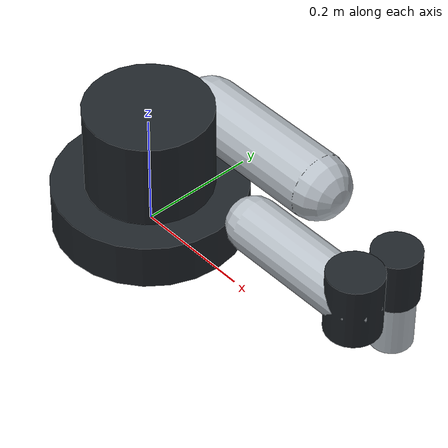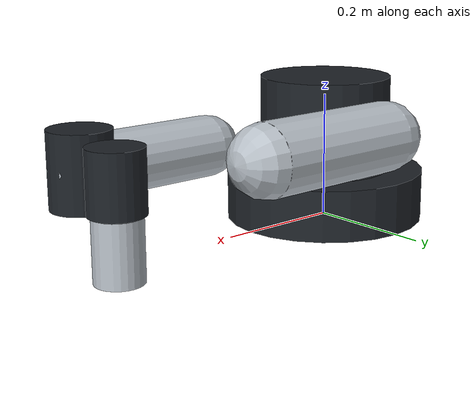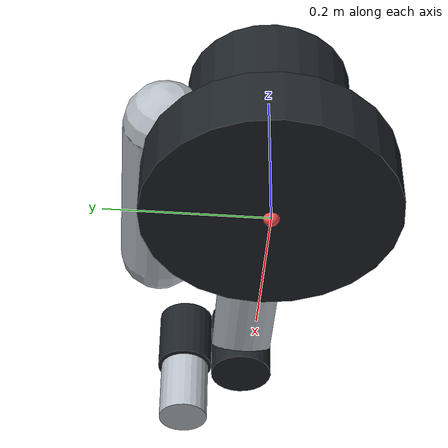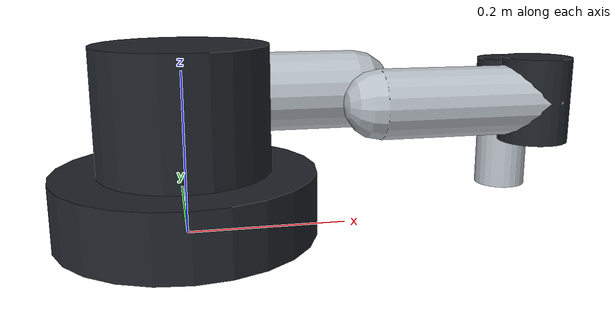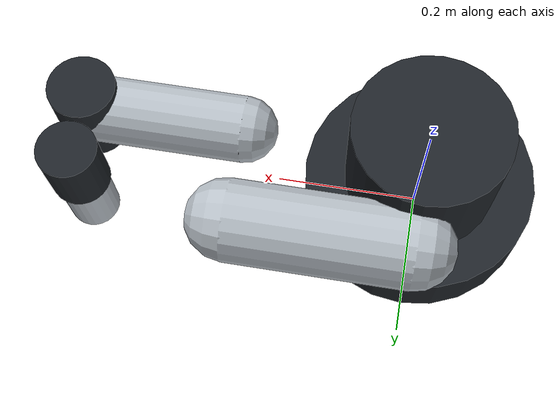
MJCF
<?xml version="1.0" ?>
<mujoco model="ur3e">
  <compiler angle="radian"/>
  <option timestep="0.002" integrator="implicit"/>
  <asset>
    <material name="ur_light" rgba="0.72 0.75 0.78 1" specular="0.3" shininess="0.2"/>
    <material name="ur_dark" rgba="0.12 0.14 0.16 1" specular="0.2" shininess="0.15"/>
  </asset>
  <actuator>
    <motor name="torq_j1" joint="shoulder_pan_joint" ctrlrange="-80 80"/>
    <motor name="torq_j2" joint="shoulder_lift_joint" ctrlrange="-80 80"/>
    <motor name="torq_j3" joint="elbow_joint" ctrlrange="-50 50"/>
    <motor name="torq_j4" joint="wrist_1_joint" ctrlrange="-20 20"/>
    <motor name="torq_j5" joint="wrist_2_joint" ctrlrange="-20 20"/>
    <motor name="torq_j6" joint="wrist_3_joint" ctrlrange="-20 20"/>
  </actuator>
  <worldbody>
    <body name="base" pos="0 0 0">
      <!-- Match RoboCasa's PandaOmron third-person camera geometry. -->
      <camera name="robotview" pos="-0.6 0 1.15"
              quat="0.653 0.271 0.271 0.653" fovy="60"/>
      <camera name="agentview_left" pos="-0.5 0.35 1.05"
              quat="0.55623853 0.29935253 -0.37678665 -0.6775092"
              fovy="60"/>
      <camera name="agentview_right" pos="-0.5 -0.35 1.05"
              quat="0.67750919 0.37678668 -0.29935256 -0.55623859"
              fovy="60"/>
      <body name="fixed_base_link" pos="0 0 0">
        <site name="right_center" pos="0 0 0" size="0.01"
              rgba="1 0.3 0.3 1" group="2"/>
        <geom name="base_col" type="cylinder" size="0.16 0.04"
              pos="0 0 0.04" material="ur_dark"
              contype="0" conaffinity="0"/>
        <body name="shoulder_link" pos="0 0 0.15185">
          <inertial pos="0 0 0" mass="2.0" diaginertia="0.008 0.008 0.006"/>
          <joint name="shoulder_pan_joint" pos="0 0 0" axis="0 0 1"
                 range="-6.28319 6.28319" damping="0.05" armature="0.02"/>
          <geom name="shoulder_vis" type="cylinder" size="0.105 0.08"
                material="ur_dark" contype="0" conaffinity="0"/>
          <body name="upper_arm_link" pos="0 0.13105 0"
                quat="0.707107 0 0.707107 0">
            <inertial pos="0 0 0.12" mass="3.42"
                      diaginertia="0.022 0.022 0.01"/>
            <joint name="shoulder_lift_joint" pos="0 0 0" axis="0 1 0"
                   range="-6.28319 6.28319" damping="0.05" armature="0.02"/>
            <geom name="upper_arm_vis" type="capsule" fromto="0 0 0 0 0 0.24355"
                  size="0.055" material="ur_light"
                  contype="0" conaffinity="0"/>
            <body name="forearm_link" pos="0 -0.13105 0.24355">
              <inertial pos="0 0 0.1" mass="1.26"
                        diaginertia="0.007 0.007 0.004"/>
              <joint name="elbow_joint" pos="0 0 0" axis="0 1 0"
                     range="-3.14159 3.14159" damping="0.05" armature="0.02"/>
              <geom name="forearm_vis" type="capsule" fromto="0 0 0 0 0 0.2132"
                    size="0.045" material="ur_light"
                    contype="0" conaffinity="0"/>
              <body name="wrist_1_link" pos="0 0 0.2132"
                    quat="0.707107 0 0.707107 0">
                <inertial pos="0 0 0" mass="0.8"
                          diaginertia="0.0021 0.0021 0.0023"/>
                <joint name="wrist_1_joint" pos="0 0 0" axis="0 1 0"
                       range="-6.28319 6.28319" damping="0.03" armature="0.01"/>
                <geom name="wrist1_vis" type="cylinder" size="0.045 0.055"
                      material="ur_dark" contype="0" conaffinity="0"/>
                <body name="wrist_2_link" pos="0 0.08535 0">
                  <inertial pos="0 0 0" mass="0.8"
                            diaginertia="0.0021 0.0021 0.0023"/>
                  <joint name="wrist_2_joint" pos="0 0 0" axis="0 0 1"
                         range="-6.28319 6.28319" damping="0.03" armature="0.01"/>
                  <geom name="wrist2_vis" type="cylinder" size="0.04 0.045"
                        material="ur_dark" contype="0" conaffinity="0"/>
                  <body name="wrist_3_link" pos="0 0 0.0921">
                    <inertial pos="0 0 0" mass="0.35"
                              diaginertia="0.00015 0.00015 0.0002"/>
                    <joint name="wrist_3_joint" pos="0 0 0" axis="0 1 0"
                           range="-6.28319 6.28319" damping="0.03" armature="0.01"/>
                    <geom name="wrist3_vis" type="cylinder" size="0.035 0.045"
                          material="ur_light" contype="0" conaffinity="0"/>
                    <body name="right_hand" pos="0 0.0921 0"
                          quat="0.707 -0.707 0 0">
                      <camera name="eye_in_hand" pos="0.05 0 0"
                              quat="0 0.707108 0.707108 0" fovy="75"/>
                    </body>
                  </body>
                </body>
              </body>
            </body>
          </body>
        </body>
      </body>
    </body>
  </worldbody>
</mujoco>
